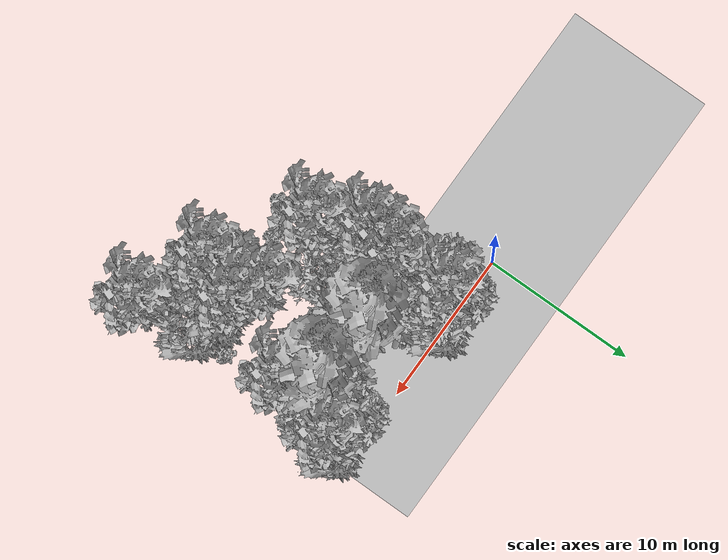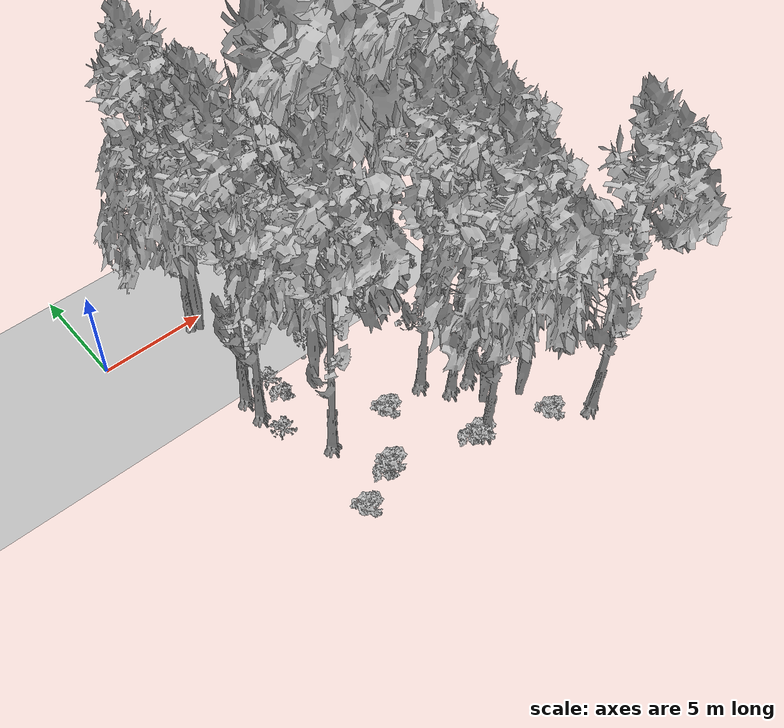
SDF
<sdf version="1.7">
 <world name="default">
  <model name="ground_plane">
   <static>1</static>
   <link name="link">
    <collision name="collision">
     <geometry><plane><normal>0 0 1</normal><size>100 100</size></plane></geometry>
     <surface><contact><ode><min_depth>0.01</min_depth><max_vel>0</max_vel></ode></contact></surface>
    </collision>
    <visual name="grass">
     <cast_shadows>0</cast_shadows>
     <geometry>
      <mesh>
       <scale>0.5814285714285714 0.18142857142857144 0.1</scale>
       <uri>file://grass_plane/meshes/grass_plane.dae</uri>
      </mesh>
     </geometry>
    </visual>
   </link>
  </model>
  <model name="Tree 5">
   <static>1</static>
   <pose>4.5816983664871955 -4.005611911410291 0 1.57079 -0 0</pose>
   <link name="link">
    <collision name="collision">
     <geometry><mesh><scale>3.5 5 3.5</scale><uri>model://tree_9/meshes/tree_9.obj</uri></mesh></geometry>
    </collision>
    <visual name="visual">
     <geometry><mesh><scale>3.5 5 3.5</scale><uri>model://tree_9/meshes/tree_9.obj</uri></mesh></geometry>
    </visual>
   </link>
  </model>
  <model name="Tree 11">
   <static>1</static>
   <pose>14.186589528992116 -5.3285073662944065 0 1.57079 -0 0</pose>
   <link name="link">
    <collision name="collision">
     <geometry><mesh><scale>3.5 5 3.5</scale><uri>model://tree_9/meshes/tree_9.obj</uri></mesh></geometry>
    </collision>
    <visual name="visual">
     <geometry><mesh><scale>3.5 5 3.5</scale><uri>model://tree_9/meshes/tree_9.obj</uri></mesh></geometry>
    </visual>
   </link>
  </model>
  <model name="Tree 65">
   <static>1</static>
   <pose>11.842523455003224 -11.729955695811302 0 1.57079 -0 0</pose>
   <link name="link">
    <collision name="collision">
     <geometry><mesh><scale>3.5 5 3.5</scale><uri>model://tree_2/meshes/tree_2.obj</uri></mesh></geometry>
    </collision>
    <visual name="visual">
     <geometry><mesh><scale>3.5 5 3.5</scale><uri>model://tree_2/meshes/tree_2.obj</uri></mesh></geometry>
    </visual>
   </link>
  </model>
  <model name="Tree 66">
   <static>1</static>
   <pose>6.949574401604345 -6.100101802029807 0 1.57079 -0 0</pose>
   <link name="link">
    <collision name="collision">
     <geometry><mesh><scale>3.5 5 3.5</scale><uri>model://tree_2/meshes/tree_2.obj</uri></mesh></geometry>
    </collision>
    <visual name="visual">
     <geometry><mesh><scale>3.5 5 3.5</scale><uri>model://tree_2/meshes/tree_2.obj</uri></mesh></geometry>
    </visual>
   </link>
  </model>
  <model name="Tree 67">
   <static>1</static>
   <pose>3.97143975474053 -6.183082926035869 0 1.57079 -0 0</pose>
   <link name="link">
    <collision name="collision">
     <geometry><mesh><scale>3.5 5 3.5</scale><uri>model://tree_9/meshes/tree_9.obj</uri></mesh></geometry>
    </collision>
    <visual name="visual">
     <geometry><mesh><scale>3.5 5 3.5</scale><uri>model://tree_9/meshes/tree_9.obj</uri></mesh></geometry>
    </visual>
   </link>
  </model>
  <model name="Tree 70">
   <static>1</static>
   <pose>15.360218771544623 -1.163075434513651 0 1.57079 -0 0</pose>
   <link name="link">
    <collision name="collision">
     <geometry><mesh><scale>3.5 5 3.5</scale><uri>model://tree_9/meshes/tree_9.obj</uri></mesh></geometry>
    </collision>
    <visual name="visual">
     <geometry><mesh><scale>3.5 5 3.5</scale><uri>model://tree_9/meshes/tree_9.obj</uri></mesh></geometry>
    </visual>
   </link>
  </model>
  <model name="Tree 115">
   <static>1</static>
   <pose>4.588698977596991 -0.5817063040154444 0 1.57079 -0 0</pose>
   <link name="link">
    <collision name="collision">
     <geometry><mesh><scale>3.5 5 3.5</scale><uri>model://tree_2/meshes/tree_2.obj</uri></mesh></geometry>
    </collision>
    <visual name="visual">
     <geometry><mesh><scale>3.5 5 3.5</scale><uri>model://tree_2/meshes/tree_2.obj</uri></mesh></geometry>
    </visual>
   </link>
  </model>
  <model name="Tree 147">
   <static>1</static>
   <pose>4.336125752784824 -0.372990994878883 0 1.57079 -0 0</pose>
   <link name="link">
    <collision name="collision">
     <geometry><mesh><scale>3.5 5 3.5</scale><uri>model://tree_9/meshes/tree_9.obj</uri></mesh></geometry>
    </collision>
    <visual name="visual">
     <geometry><mesh><scale>3.5 5 3.5</scale><uri>model://tree_9/meshes/tree_9.obj</uri></mesh></geometry>
    </visual>
   </link>
  </model>
  <model name="Tree 148">
   <static>1</static>
   <pose>10.44670783386217 -9.308652345346745 0 1.57079 -0 0</pose>
   <link name="link">
    <collision name="collision">
     <geometry><mesh><scale>3.5 5 3.5</scale><uri>model://tree_9/meshes/tree_9.obj</uri></mesh></geometry>
    </collision>
    <visual name="visual">
     <geometry><mesh><scale>3.5 5 3.5</scale><uri>model://tree_9/meshes/tree_9.obj</uri></mesh></geometry>
    </visual>
   </link>
  </model>
  <model name="Tree 159">
   <static>1</static>
   <pose>13.364046227228073 -12.448967771104595 0 1.57079 -0 0</pose>
   <link name="link">
    <collision name="collision">
     <geometry><mesh><scale>3.5 5 3.5</scale><uri>model://tree_2/meshes/tree_2.obj</uri></mesh></geometry>
    </collision>
    <visual name="visual">
     <geometry><mesh><scale>3.5 5 3.5</scale><uri>model://tree_2/meshes/tree_2.obj</uri></mesh></geometry>
    </visual>
   </link>
  </model>
  <model name="Tree 189">
   <static>1</static>
   <pose>10.905789548742057 -12.993986948768322 0 1.57079 -0 0</pose>
   <link name="link">
    <collision name="collision">
     <geometry><mesh><scale>3.5 5 3.5</scale><uri>model://tree_9/meshes/tree_9.obj</uri></mesh></geometry>
    </collision>
    <visual name="visual">
     <geometry><mesh><scale>3.5 5 3.5</scale><uri>model://tree_9/meshes/tree_9.obj</uri></mesh></geometry>
    </visual>
   </link>
  </model>
  <model name="Tree 194">
   <static>1</static>
   <pose>8.449268420204056 -3.479067318636325 0 1.57079 -0 0</pose>
   <link name="link">
    <collision name="collision">
     <geometry><mesh><scale>3.5 5 3.5</scale><uri>model://tree_4/meshes/tree_4.obj</uri></mesh></geometry>
    </collision>
    <visual name="visual">
     <geometry><mesh><scale>3.5 5 3.5</scale><uri>model://tree_4/meshes/tree_4.obj</uri></mesh></geometry>
    </visual>
   </link>
  </model>
  <model name="Tree 198">
   <static>1</static>
   <pose>12.783256973314856 -3.847708806056575 0 1.57079 -0 0</pose>
   <link name="link">
    <collision name="collision">
     <geometry><mesh><scale>3.5 5 3.5</scale><uri>model://tree_4/meshes/tree_4.obj</uri></mesh></geometry>
    </collision>
    <visual name="visual">
     <geometry><mesh><scale>3.5 5 3.5</scale><uri>model://tree_4/meshes/tree_4.obj</uri></mesh></geometry>
    </visual>
   </link>
  </model>
  <model name="Tree 260">
   <static>1</static>
   <pose>15.38556840082461 -14.948471095456734 0 1.57079 -0 0</pose>
   <link name="link">
    <collision name="collision">
     <geometry><mesh><scale>3.5 5 3.5</scale><uri>model://tree_9/meshes/tree_9.obj</uri></mesh></geometry>
    </collision>
    <visual name="visual">
     <geometry><mesh><scale>3.5 5 3.5</scale><uri>model://tree_9/meshes/tree_9.obj</uri></mesh></geometry>
    </visual>
   </link>
  </model>
  <model name="Tree 290">
   <static>1</static>
   <pose>3.9726694468156936 -5.0850878536131106 0 1.57079 -0 0</pose>
   <link name="link">
    <collision name="collision">
     <geometry><mesh><scale>3.5 5 3.5</scale><uri>model://tree_9/meshes/tree_9.obj</uri></mesh></geometry>
    </collision>
    <visual name="visual">
     <geometry><mesh><scale>3.5 5 3.5</scale><uri>model://tree_9/meshes/tree_9.obj</uri></mesh></geometry>
    </visual>
   </link>
  </model>
  <model name="Tree 376">
   <static>1</static>
   <pose>5.40159961535678 -9.3629643586793 0 1.57079 -0 0</pose>
   <link name="link">
    <collision name="collision">
     <geometry><mesh><scale>3.5 5 3.5</scale><uri>model://tree_9/meshes/tree_9.obj</uri></mesh></geometry>
    </collision>
    <visual name="visual">
     <geometry><mesh><scale>3.5 5 3.5</scale><uri>model://tree_9/meshes/tree_9.obj</uri></mesh></geometry>
    </visual>
   </link>
  </model>
  <model name="Tree 405">
   <static>1</static>
   <pose>14.211338208427982 -1.5217517076425917 0 1.57079 -0 0</pose>
   <link name="link">
    <collision name="collision">
     <geometry><mesh><scale>3.5 5 3.5</scale><uri>model://tree_2/meshes/tree_2.obj</uri></mesh></geometry>
    </collision>
    <visual name="visual">
     <geometry><mesh><scale>3.5 5 3.5</scale><uri>model://tree_2/meshes/tree_2.obj</uri></mesh></geometry>
    </visual>
   </link>
  </model>
  <model name="Tree 424">
   <static>1</static>
   <pose>12.310690703500661 -10.448246301752208 0 1.57079 -0 0</pose>
   <link name="link">
    <collision name="collision">
     <geometry><mesh><scale>3.5 5 3.5</scale><uri>model://tree_9/meshes/tree_9.obj</uri></mesh></geometry>
    </collision>
    <visual name="visual">
     <geometry><mesh><scale>3.5 5 3.5</scale><uri>model://tree_9/meshes/tree_9.obj</uri></mesh></geometry>
    </visual>
   </link>
  </model>
  <model name="Tree 442">
   <static>1</static>
   <pose>11.308239487308661 -10.395390950039843 0 1.57079 -0 0</pose>
   <link name="link">
    <collision name="collision">
     <geometry><mesh><scale>3.5 5 3.5</scale><uri>model://tree_9/meshes/tree_9.obj</uri></mesh></geometry>
    </collision>
    <visual name="visual">
     <geometry><mesh><scale>3.5 5 3.5</scale><uri>model://tree_9/meshes/tree_9.obj</uri></mesh></geometry>
    </visual>
   </link>
  </model>
  <model name="Bush 9">
   <static>1</static>
   <pose>4.623649928259127 -12.694692096943633 0 1.57079 -0 0</pose>
   <link name="link">
    <collision name="collision">
     <geometry><mesh><scale>2 2 2</scale><uri>model://bush_3/meshes/bush_3.obj</uri></mesh></geometry>
     <surface><contact><collide_without_contact>false</collide_without_contact></contact></surface>
    </collision>
    <visual name="visual">
     <geometry><mesh><scale>2 2 2</scale><uri>model://bush_3/meshes/bush_3.obj</uri></mesh></geometry>
    </visual>
   </link>
  </model>
  <model name="Bush 29">
   <static>1</static>
   <pose>8.337893808421867 -9.534821375203611 0 1.57079 -0 0</pose>
   <link name="link">
    <collision name="collision">
     <geometry><mesh><scale>2 2 2</scale><uri>model://bush_3/meshes/bush_3.obj</uri></mesh></geometry>
     <surface><contact><collide_without_contact>false</collide_without_contact></contact></surface>
    </collision>
    <visual name="visual">
     <geometry><mesh><scale>2 2 2</scale><uri>model://bush_3/meshes/bush_3.obj</uri></mesh></geometry>
    </visual>
   </link>
  </model>
  <model name="Bush 52">
   <static>1</static>
   <pose>12.057393464991883 -6.731742907120363 0 1.57079 -0 0</pose>
   <link name="link">
    <collision name="collision">
     <geometry><mesh><scale>2 2 2</scale><uri>model://bush_4/meshes/bush_4.obj</uri></mesh></geometry>
     <surface><contact><collide_without_contact>false</collide_without_contact></contact></surface>
    </collision>
    <visual name="visual">
     <geometry><mesh><scale>2 2 2</scale><uri>model://bush_4/meshes/bush_4.obj</uri></mesh></geometry>
    </visual>
   </link>
  </model>
  <model name="Bush 66">
   <static>1</static>
   <pose>10.695156467023608 -12.969490989961518 0 1.57079 -0 0</pose>
   <link name="link">
    <collision name="collision">
     <geometry><mesh><scale>2 2 2</scale><uri>model://bush_3/meshes/bush_3.obj</uri></mesh></geometry>
     <surface><contact><collide_without_contact>false</collide_without_contact></contact></surface>
    </collision>
    <visual name="visual">
     <geometry><mesh><scale>2 2 2</scale><uri>model://bush_3/meshes/bush_3.obj</uri></mesh></geometry>
    </visual>
   </link>
  </model>
  <model name="Bush 75">
   <static>1</static>
   <pose>11.290819799990231 -4.917021320504723 0 1.57079 -0 0</pose>
   <link name="link">
    <collision name="collision">
     <geometry><mesh><scale>2 2 2</scale><uri>model://bush_0/meshes/bush_0.obj</uri></mesh></geometry>
     <surface><contact><collide_without_contact>false</collide_without_contact></contact></surface>
    </collision>
    <visual name="visual">
     <geometry><mesh><scale>2 2 2</scale><uri>model://bush_0/meshes/bush_0.obj</uri></mesh></geometry>
    </visual>
   </link>
  </model>
  <model name="Bush 76">
   <static>1</static>
   <pose>10.86889585197541 -2.2181461326403777 0 1.57079 -0 0</pose>
   <link name="link">
    <collision name="collision">
     <geometry><mesh><scale>2 2 2</scale><uri>model://bush_0/meshes/bush_0.obj</uri></mesh></geometry>
     <surface><contact><collide_without_contact>false</collide_without_contact></contact></surface>
    </collision>
    <visual name="visual">
     <geometry><mesh><scale>2 2 2</scale><uri>model://bush_0/meshes/bush_0.obj</uri></mesh></geometry>
    </visual>
   </link>
  </model>
  <model name="Bush 81">
   <static>1</static>
   <pose>13.009470297585267 -7.340606655843791 0 1.57079 -0 0</pose>
   <link name="link">
    <collision name="collision">
     <geometry><mesh><scale>2 2 2</scale><uri>model://bush_3/meshes/bush_3.obj</uri></mesh></geometry>
     <surface><contact><collide_without_contact>false</collide_without_contact></contact></surface>
    </collision>
    <visual name="visual">
     <geometry><mesh><scale>2 2 2</scale><uri>model://bush_3/meshes/bush_3.obj</uri></mesh></geometry>
    </visual>
   </link>
  </model>
  <model name="Bush 94">
   <static>1</static>
   <pose>4.943683660348611 -5.355831535052122 0 1.57079 -0 0</pose>
   <link name="link">
    <collision name="collision">
     <geometry><mesh><scale>2 2 2</scale><uri>model://bush_5/meshes/bush_5.obj</uri></mesh></geometry>
     <surface><contact><collide_without_contact>false</collide_without_contact></contact></surface>
    </collision>
    <visual name="visual">
     <geometry><mesh><scale>2 2 2</scale><uri>model://bush_5/meshes/bush_5.obj</uri></mesh></geometry>
    </visual>
   </link>
  </model>
  <model name="Bush 105">
   <static>1</static>
   <pose>14.557173154912967 -3.607173381637569 0 1.57079 -0 0</pose>
   <link name="link">
    <collision name="collision">
     <geometry><mesh><scale>2 2 2</scale><uri>model://bush_2/meshes/bush_2.obj</uri></mesh></geometry>
     <surface><contact><collide_without_contact>false</collide_without_contact></contact></surface>
    </collision>
    <visual name="visual">
     <geometry><mesh><scale>2 2 2</scale><uri>model://bush_2/meshes/bush_2.obj</uri></mesh></geometry>
    </visual>
   </link>
  </model>
  <model name="Bush 112">
   <static>1</static>
   <pose>12.224851868801323 -1.6312518522994264 0 1.57079 -0 0</pose>
   <link name="link">
    <collision name="collision">
     <geometry><mesh><scale>2 2 2</scale><uri>model://bush_1/meshes/bush_1.obj</uri></mesh></geometry>
     <surface><contact><collide_without_contact>false</collide_without_contact></contact></surface>
    </collision>
    <visual name="visual">
     <geometry><mesh><scale>2 2 2</scale><uri>model://bush_1/meshes/bush_1.obj</uri></mesh></geometry>
    </visual>
   </link>
  </model>
  <model name="Bush 136">
   <static>1</static>
   <pose>12.028757478572835 -0.7444024224884167 0 1.57079 -0 0</pose>
   <link name="link">
    <collision name="collision">
     <geometry><mesh><scale>2 2 2</scale><uri>model://bush_3/meshes/bush_3.obj</uri></mesh></geometry>
     <surface><contact><collide_without_contact>false</collide_without_contact></contact></surface>
    </collision>
    <visual name="visual">
     <geometry><mesh><scale>2 2 2</scale><uri>model://bush_3/meshes/bush_3.obj</uri></mesh></geometry>
    </visual>
   </link>
  </model>
  <model name="Bush 177">
   <static>1</static>
   <pose>14.250856603480962 -9.836656833126245 0 1.57079 -0 0</pose>
   <link name="link">
    <collision name="collision">
     <geometry><mesh><scale>2 2 2</scale><uri>model://bush_3/meshes/bush_3.obj</uri></mesh></geometry>
     <surface><contact><collide_without_contact>false</collide_without_contact></contact></surface>
    </collision>
    <visual name="visual">
     <geometry><mesh><scale>2 2 2</scale><uri>model://bush_3/meshes/bush_3.obj</uri></mesh></geometry>
    </visual>
   </link>
  </model>
  <model name="Bush 184">
   <static>1</static>
   <pose>16.082402534078597 -0.42978525468826945 0 1.57079 -0 0</pose>
   <link name="link">
    <collision name="collision">
     <geometry><mesh><scale>2 2 2</scale><uri>model://bush_5/meshes/bush_5.obj</uri></mesh></geometry>
     <surface><contact><collide_without_contact>false</collide_without_contact></contact></surface>
    </collision>
    <visual name="visual">
     <geometry><mesh><scale>2 2 2</scale><uri>model://bush_5/meshes/bush_5.obj</uri></mesh></geometry>
    </visual>
   </link>
  </model>
  <model name="Bush 195">
   <static>1</static>
   <pose>13.752582178641461 -14.070247717722177 0 1.57079 -0 0</pose>
   <link name="link">
    <collision name="collision">
     <geometry><mesh><scale>2 2 2</scale><uri>model://bush_3/meshes/bush_3.obj</uri></mesh></geometry>
     <surface><contact><collide_without_contact>false</collide_without_contact></contact></surface>
    </collision>
    <visual name="visual">
     <geometry><mesh><scale>2 2 2</scale><uri>model://bush_3/meshes/bush_3.obj</uri></mesh></geometry>
    </visual>
   </link>
  </model>
  <model name="Bush 199">
   <static>1</static>
   <pose>5.27439008135913 -5.936076606401828 0 1.57079 -0 0</pose>
   <link name="link">
    <collision name="collision">
     <geometry><mesh><scale>2 2 2</scale><uri>model://bush_2/meshes/bush_2.obj</uri></mesh></geometry>
     <surface><contact><collide_without_contact>false</collide_without_contact></contact></surface>
    </collision>
    <visual name="visual">
     <geometry><mesh><scale>2 2 2</scale><uri>model://bush_2/meshes/bush_2.obj</uri></mesh></geometry>
    </visual>
   </link>
  </model>
  <model name="Bush 205">
   <static>1</static>
   <pose>6.180755809136002 -11.859417541748602 0 1.57079 -0 0</pose>
   <link name="link">
    <collision name="collision">
     <geometry><mesh><scale>2 2 2</scale><uri>model://bush_2/meshes/bush_2.obj</uri></mesh></geometry>
     <surface><contact><collide_without_contact>false</collide_without_contact></contact></surface>
    </collision>
    <visual name="visual">
     <geometry><mesh><scale>2 2 2</scale><uri>model://bush_2/meshes/bush_2.obj</uri></mesh></geometry>
    </visual>
   </link>
  </model>
  <model name="Bush 209">
   <static>1</static>
   <pose>5.905192480307342 -1.5732632520440806 0 1.57079 -0 0</pose>
   <link name="link">
    <collision name="collision">
     <geometry><mesh><scale>2 2 2</scale><uri>model://bush_0/meshes/bush_0.obj</uri></mesh></geometry>
     <surface><contact><collide_without_contact>false</collide_without_contact></contact></surface>
    </collision>
    <visual name="visual">
     <geometry><mesh><scale>2 2 2</scale><uri>model://bush_0/meshes/bush_0.obj</uri></mesh></geometry>
    </visual>
   </link>
  </model>
  <model name="Bush 210">
   <static>1</static>
   <pose>13.682312168941394 -10.472798157292088 0 1.57079 -0 0</pose>
   <link name="link">
    <collision name="collision">
     <geometry><mesh><scale>2 2 2</scale><uri>model://bush_2/meshes/bush_2.obj</uri></mesh></geometry>
     <surface><contact><collide_without_contact>false</collide_without_contact></contact></surface>
    </collision>
    <visual name="visual">
     <geometry><mesh><scale>2 2 2</scale><uri>model://bush_2/meshes/bush_2.obj</uri></mesh></geometry>
    </visual>
   </link>
  </model>
  <model name="Bush 219">
   <static>1</static>
   <pose>7.565082961342945 -4.661021780044704 0 1.57079 -0 0</pose>
   <link name="link">
    <collision name="collision">
     <geometry><mesh><scale>2 2 2</scale><uri>model://bush_5/meshes/bush_5.obj</uri></mesh></geometry>
     <surface><contact><collide_without_contact>false</collide_without_contact></contact></surface>
    </collision>
    <visual name="visual">
     <geometry><mesh><scale>2 2 2</scale><uri>model://bush_5/meshes/bush_5.obj</uri></mesh></geometry>
    </visual>
   </link>
  </model>
  <model name="Bush 265">
   <static>1</static>
   <pose>10.706624470262035 -4.760601448031421 0 1.57079 -0 0</pose>
   <link name="link">
    <collision name="collision">
     <geometry><mesh><scale>2 2 2</scale><uri>model://bush_0/meshes/bush_0.obj</uri></mesh></geometry>
     <surface><contact><collide_without_contact>false</collide_without_contact></contact></surface>
    </collision>
    <visual name="visual">
     <geometry><mesh><scale>2 2 2</scale><uri>model://bush_0/meshes/bush_0.obj</uri></mesh></geometry>
    </visual>
   </link>
  </model>
  <model name="Bush 283">
   <static>1</static>
   <pose>14.391570724540706 -2.6937701696006116 0 1.57079 -0 0</pose>
   <link name="link">
    <collision name="collision">
     <geometry><mesh><scale>2 2 2</scale><uri>model://bush_1/meshes/bush_1.obj</uri></mesh></geometry>
     <surface><contact><collide_without_contact>false</collide_without_contact></contact></surface>
    </collision>
    <visual name="visual">
     <geometry><mesh><scale>2 2 2</scale><uri>model://bush_1/meshes/bush_1.obj</uri></mesh></geometry>
    </visual>
   </link>
  </model>
  <model name="Bush 317">
   <static>1</static>
   <pose>3.9000141611881034 -7.820814951356986 0 1.57079 -0 0</pose>
   <link name="link">
    <collision name="collision">
     <geometry><mesh><scale>2 2 2</scale><uri>model://bush_5/meshes/bush_5.obj</uri></mesh></geometry>
     <surface><contact><collide_without_contact>false</collide_without_contact></contact></surface>
    </collision>
    <visual name="visual">
     <geometry><mesh><scale>2 2 2</scale><uri>model://bush_5/meshes/bush_5.obj</uri></mesh></geometry>
    </visual>
   </link>
  </model>
  <model name="Bush 321">
   <static>1</static>
   <pose>10.097964256488694 -12.831569442943444 0 1.57079 -0 0</pose>
   <link name="link">
    <collision name="collision">
     <geometry><mesh><scale>2 2 2</scale><uri>model://bush_2/meshes/bush_2.obj</uri></mesh></geometry>
     <surface><contact><collide_without_contact>false</collide_without_contact></contact></surface>
    </collision>
    <visual name="visual">
     <geometry><mesh><scale>2 2 2</scale><uri>model://bush_2/meshes/bush_2.obj</uri></mesh></geometry>
    </visual>
   </link>
  </model>
  <model name="Bush 333">
   <static>1</static>
   <pose>6.757011928511261 -11.692517172581095 0 1.57079 -0 0</pose>
   <link name="link">
    <collision name="collision">
     <geometry><mesh><scale>2 2 2</scale><uri>model://bush_3/meshes/bush_3.obj</uri></mesh></geometry>
     <surface><contact><collide_without_contact>false</collide_without_contact></contact></surface>
    </collision>
    <visual name="visual">
     <geometry><mesh><scale>2 2 2</scale><uri>model://bush_3/meshes/bush_3.obj</uri></mesh></geometry>
    </visual>
   </link>
  </model>
 </world>
</sdf>
